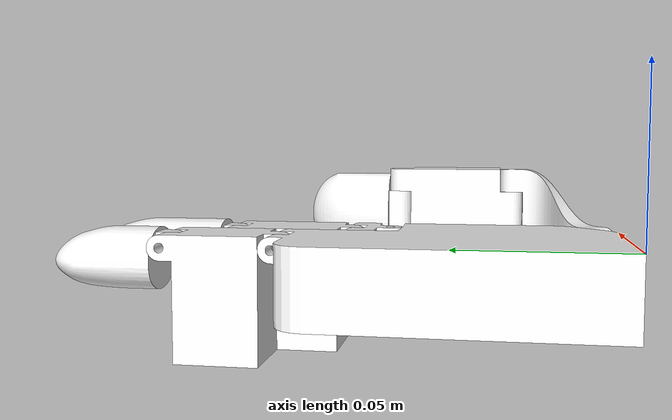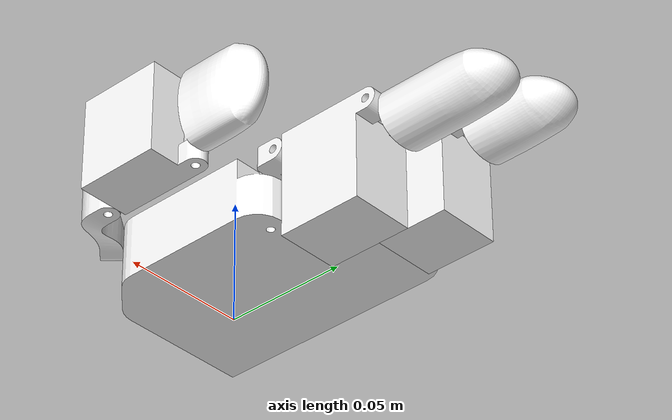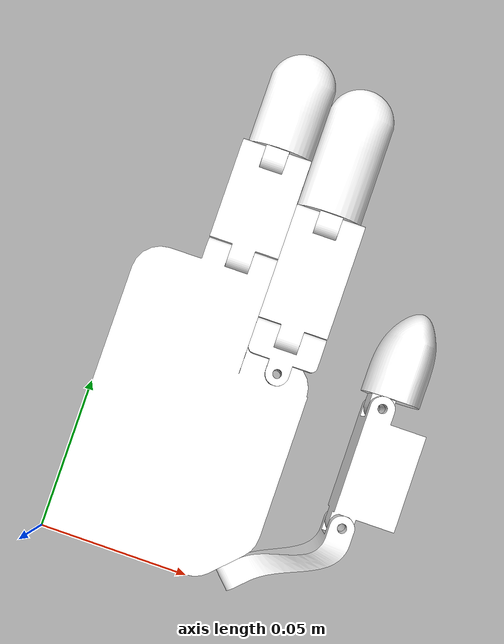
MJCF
<mujoco model="Gripper3">
  <compiler angle="radian"/>

  <asset>
    <mesh name="base_link" file="base_link.STL"/>
    <mesh name="link_thumb_1" file="link_thumb_1.STL"/>
    <mesh name="link_thumb_2" file="link_thumb_2.STL"/>
    <mesh name="link_thumb_3" file="link_thumb_3.STL"/>
    <mesh name="link_index_1" file="link_index_1.STL"/>
    <mesh name="link_index_2" file="link_index_2.STL"/>
    <mesh name="link_index_3" file="link_index_3.STL"/>
    <mesh name="link_mid_1" file="link_mid_1.STL"/>
    <mesh name="link_mid_2" file="link_mid_2.STL"/>
  </asset>

  <worldbody>
    <geom contype="1" conaffinity="0" type="mesh" rgba="1 1 1 1" mesh="base_link"/>
    <body name="link_thumb_1" pos="0.067157 0.0018431 -0.004" quat="0.65328 0.653282 0.270599 0.270598">
      <inertial pos="0.0249818 0.00292519 -0.000426827" quat="-0.151282 0.621205 0.181654 0.747141" mass="0.00603639" diaginertia="7.12491e-07 4.67003e-07 3.02562e-07"/>
      <joint name="joint_thumb_1" pos="0 0 0" axis="0 0 1" range="-1.57 1.57"/>
      <geom contype="1" conaffinity="0" type="mesh" rgba="1 1 1 1" mesh="link_thumb_1"/>
      <body name="link_thumb_2" pos="0.038891 0.022 -0.0037574" quat="0.65328 -0.653282 0.270598 0.270599">
        <inertial pos="0.0198794 -0.00556857 -0.0175" quat="0.707107 0 0 0.707107" mass="0.0241355" diaginertia="4.23972e-06 3.07524e-06 2.67648e-06"/>
        <joint name="joint_thumb_2" pos="0 0 0" axis="0 0 1" range="-1.57 1.57"/>
        <geom contype="1" conaffinity="0" type="mesh" rgba="1 1 1 1" mesh="link_thumb_2"/>
        <body name="link_thumb_3" pos="0.04 0 0">
          <inertial pos="0.000430237 0 -0.0175" mass="0.000942116" diaginertia="3.34086e-08 3.32342e-08 9.95885e-09"/>
          <joint name="joint_thumb_3" pos="0 0 0" axis="0 0 1" range="-1.57 1.57"/>
          <geom contype="1" conaffinity="0" type="mesh" rgba="1 1 1 1" mesh="link_thumb_3"/>
        </body>
      </body>
    </body>
    <body name="link_index_1" pos="0.057 0.072 0">
      <inertial pos="0 0.00714496 -0.004" quat="0.5 0.5 0.5 0.5" mass="0.0019458" diaginertia="5.18781e-08 4.86389e-08 1.75868e-08"/>
      <joint name="joint_index_1" pos="0 0 0" axis="0 0 -1" range="0 0.717"/>
      <geom contype="1" conaffinity="0" type="mesh" rgba="1 1 1 1" mesh="link_index_1"/>
      <body name="link_index_2" pos="0.012 0.012 -0.004" quat="0.499998 0.5 0.500002 0.5">
        <inertial pos="0.0202433 -0.0154033 -0.012" quat="0.5 0.5 -0.5 0.5" mass="0.03191" diaginertia="6.73002e-06 5.58331e-06 4.10853e-06"/>
        <joint name="joint_index_2" pos="0 0 0" axis="0 0 1" range="0 1.57"/>
        <geom contype="1" conaffinity="0" type="mesh" rgba="1 1 1 1" mesh="link_index_2"/>
        <body name="link_index_3" pos="0.04 0 0">
          <inertial pos="0.000430237 0 -0.012" quat="0.707107 0.707107 0 0" mass="0.000396681" diaginertia="4.24894e-09 4.1932e-09 4.17552e-09"/>
          <joint name="joint_index_3" pos="0 0 0" axis="0 0 1" range="0 3.14"/>
          <geom contype="1" conaffinity="0" type="mesh" rgba="1 1 1 1" mesh="link_index_3"/>
        </body>
      </body>
    </body>
    <body name="link_mid_1" pos="0.021 0.104 -0.004" quat="0.499998 0.5 0.500002 0.5">
      <inertial pos="0.0177498 -0.0152977 0.012" quat="0.5 0.5 -0.5 0.5" mass="0.02711" diaginertia="5.04322e-06 4.71291e-06 2.83133e-06"/>
      <joint name="joint_mid_1" pos="0 0 0" axis="0 0 1" range="0 1.57"/>
      <geom contype="1" conaffinity="0" type="mesh" rgba="1 1 1 1" mesh="link_mid_1"/>
      <body name="link_mid_2" pos="0.035 0 0">
        <inertial pos="0.000430237 0 0.012" quat="0.707107 0.707107 0 0" mass="0.000396681" diaginertia="4.24894e-09 4.1932e-09 4.17552e-09"/>
        <joint name="joint_mid_2" pos="0 0 0" axis="0 0 1" range="0 3.14"/>
        <geom contype="1" conaffinity="0" type="mesh" rgba="1 1 1 1" mesh="link_mid_2"/>
      </body>
    </body>
  </worldbody>
</mujoco>
